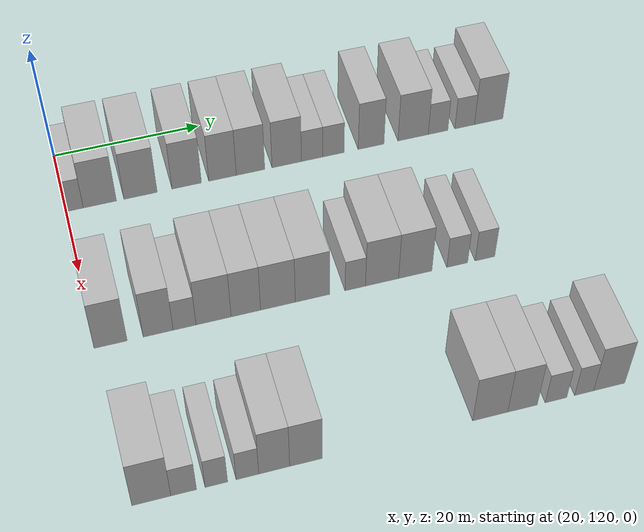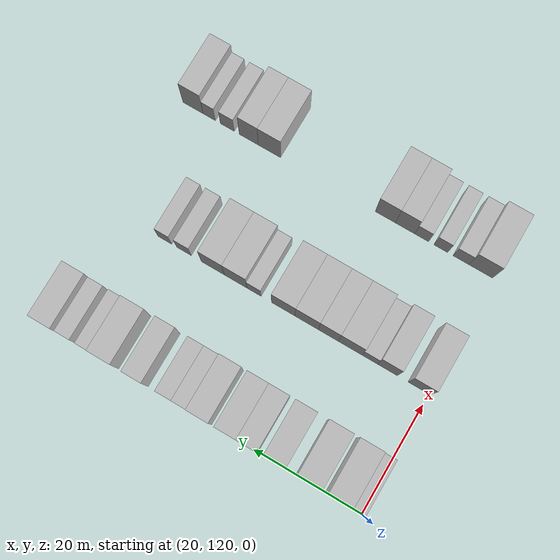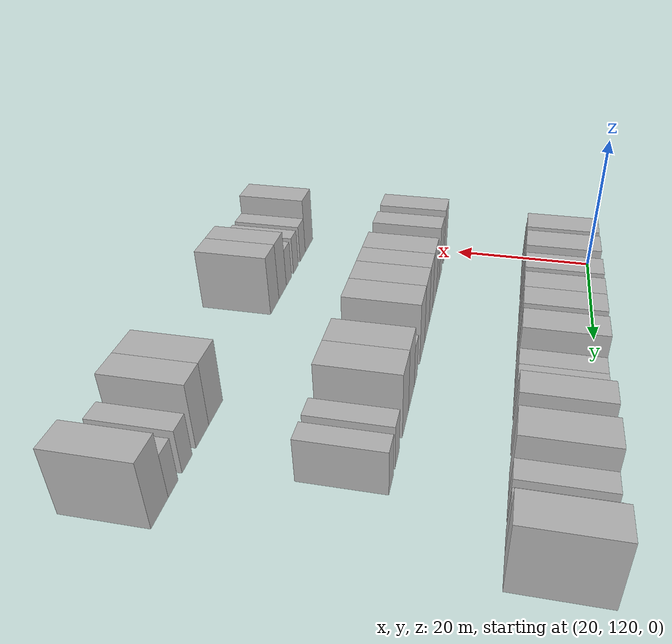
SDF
<sdf version="1.6">
 <world name="default">
  <model name="building_120">
   <static>1</static>
   <pose>25.0000 121.0644 0 0.000000 0.000000 0.000000</pose>
   <link name="link">
    <pose>0 0 3.00 0 0 0</pose>
    <collision name="collision"><geometry><box><size>10.0000 2.4453 6.0000</size></box></geometry></collision>
    <visual name="visual">
     <cast_shadows>0</cast_shadows>
     <geometry><box><size>10.0000 2.4453 6.0000</size></box></geometry>
     <material>
      <script>
       <uri>model://HANNAS_wall/materials/scripts</uri>
       <uri>model://HANNAS_wall/materials/textures</uri>
       <name>vrc/HANNAS_wall</name>
      </script>
     </material>
    </visual>
   </link>
  </model>
  <model name="building_121">
   <static>1</static>
   <pose>25.0000 124.4871 0 0.000000 0.000000 0.000000</pose>
   <link name="link">
    <pose>0 0 4.50 0 0 0</pose>
    <collision name="collision"><geometry><box><size>10.0000 4.4001 9.0000</size></box></geometry></collision>
    <visual name="visual">
     <cast_shadows>0</cast_shadows>
     <geometry><box><size>10.0000 4.4001 9.0000</size></box></geometry>
     <material>
      <script>
       <uri>model://HANNAS_wall/materials/scripts</uri>
       <uri>model://HANNAS_wall/materials/textures</uri>
       <name>vrc/HANNAS_wall</name>
      </script>
     </material>
    </visual>
   </link>
  </model>
  <model name="building_122">
   <static>1</static>
   <pose>25.0000 129.9169 0 0.000000 0.000000 0.000000</pose>
   <link name="link">
    <pose>0 0 4.50 0 0 0</pose>
    <collision name="collision"><geometry><box><size>10.0000 4.4595 9.0000</size></box></geometry></collision>
    <visual name="visual">
     <cast_shadows>0</cast_shadows>
     <geometry><box><size>10.0000 4.4595 9.0000</size></box></geometry>
     <material>
      <script>
       <uri>model://HANNAS_wall/materials/scripts</uri>
       <uri>model://HANNAS_wall/materials/textures</uri>
       <name>vrc/HANNAS_wall</name>
      </script>
     </material>
    </visual>
   </link>
  </model>
  <model name="building_123">
   <static>1</static>
   <pose>25.0000 136.1420 0 0.000000 0.000000 0.000000</pose>
   <link name="link">
    <pose>0 0 4.50 0 0 0</pose>
    <collision name="collision"><geometry><box><size>10.0000 3.9908 9.0000</size></box></geometry></collision>
    <visual name="visual">
     <cast_shadows>0</cast_shadows>
     <geometry><box><size>10.0000 3.9908 9.0000</size></box></geometry>
     <material>
      <script>
       <uri>model://HANNAS_wall/materials/scripts</uri>
       <uri>model://HANNAS_wall/materials/textures</uri>
       <name>vrc/HANNAS_wall</name>
      </script>
     </material>
    </visual>
   </link>
  </model>
  <model name="building_124">
   <static>1</static>
   <pose>25.0000 141.0185 0 0.000000 0.000000 0.000000</pose>
   <link name="link">
    <pose>0 0 4.50 0 0 0</pose>
    <collision name="collision"><geometry><box><size>10.0000 3.7621 9.0000</size></box></geometry></collision>
    <visual name="visual">
     <cast_shadows>0</cast_shadows>
     <geometry><box><size>10.0000 3.7621 9.0000</size></box></geometry>
     <material>
      <script>
       <uri>model://HANNAS_wall/materials/scripts</uri>
       <uri>model://HANNAS_wall/materials/textures</uri>
       <name>vrc/HANNAS_wall</name>
      </script>
     </material>
    </visual>
   </link>
  </model>
  <model name="building_125">
   <static>1</static>
   <pose>25.0000 144.8563 0 0.000000 0.000000 0.000000</pose>
   <link name="link">
    <pose>0 0 4.50 0 0 0</pose>
    <collision name="collision"><geometry><box><size>10.0000 3.9134 9.0000</size></box></geometry></collision>
    <visual name="visual">
     <cast_shadows>0</cast_shadows>
     <geometry><box><size>10.0000 3.9134 9.0000</size></box></geometry>
     <material>
      <script>
       <uri>model://HANNAS_wall/materials/scripts</uri>
       <uri>model://HANNAS_wall/materials/textures</uri>
       <name>vrc/HANNAS_wall</name>
      </script>
     </material>
    </visual>
   </link>
  </model>
  <model name="building_126">
   <static>1</static>
   <pose>25.0000 149.8537 0 0.000000 0.000000 0.000000</pose>
   <link name="link">
    <pose>0 0 4.50 0 0 0</pose>
    <collision name="collision"><geometry><box><size>10.0000 4.0814 9.0000</size></box></geometry></collision>
    <visual name="visual">
     <cast_shadows>0</cast_shadows>
     <geometry><box><size>10.0000 4.0814 9.0000</size></box></geometry>
     <material>
      <script>
       <uri>model://HANNAS_wall/materials/scripts</uri>
       <uri>model://HANNAS_wall/materials/textures</uri>
       <name>vrc/HANNAS_wall</name>
      </script>
     </material>
    </visual>
   </link>
  </model>
  <model name="building_127">
   <static>1</static>
   <pose>25.0000 153.3844 0 0.000000 0.000000 0.000000</pose>
   <link name="link">
    <pose>0 0 3.00 0 0 0</pose>
    <collision name="collision"><geometry><box><size>10.0000 2.9800 6.0000</size></box></geometry></collision>
    <visual name="visual">
     <cast_shadows>0</cast_shadows>
     <geometry><box><size>10.0000 2.9800 6.0000</size></box></geometry>
     <material>
      <script>
       <uri>model://HANNAS_wall/materials/scripts</uri>
       <uri>model://HANNAS_wall/materials/textures</uri>
       <name>vrc/HANNAS_wall</name>
      </script>
     </material>
    </visual>
   </link>
  </model>
  <model name="building_128">
   <static>1</static>
   <pose>25.0000 156.3666 0 0.000000 0.000000 0.000000</pose>
   <link name="link">
    <pose>0 0 3.00 0 0 0</pose>
    <collision name="collision"><geometry><box><size>10.0000 2.9844 6.0000</size></box></geometry></collision>
    <visual name="visual">
     <cast_shadows>0</cast_shadows>
     <geometry><box><size>10.0000 2.9844 6.0000</size></box></geometry>
     <material>
      <script>
       <uri>model://HANNAS_wall/materials/scripts</uri>
       <uri>model://HANNAS_wall/materials/textures</uri>
       <name>vrc/HANNAS_wall</name>
      </script>
     </material>
    </visual>
   </link>
  </model>
  <model name="building_129">
   <static>1</static>
   <pose>25.0000 161.6820 0 0.000000 0.000000 0.000000</pose>
   <link name="link">
    <pose>0 0 4.50 0 0 0</pose>
    <collision name="collision"><geometry><box><size>10.0000 3.6465 9.0000</size></box></geometry></collision>
    <visual name="visual">
     <cast_shadows>0</cast_shadows>
     <geometry><box><size>10.0000 3.6465 9.0000</size></box></geometry>
     <material>
      <script>
       <uri>model://HANNAS_wall/materials/scripts</uri>
       <uri>model://HANNAS_wall/materials/textures</uri>
       <name>vrc/HANNAS_wall</name>
      </script>
     </material>
    </visual>
   </link>
  </model>
  <model name="building_130">
   <static>1</static>
   <pose>25.0000 167.6721 0 0.000000 0.000000 0.000000</pose>
   <link name="link">
    <pose>0 0 4.50 0 0 0</pose>
    <collision name="collision"><geometry><box><size>10.0000 4.3336 9.0000</size></box></geometry></collision>
    <visual name="visual">
     <cast_shadows>0</cast_shadows>
     <geometry><box><size>10.0000 4.3336 9.0000</size></box></geometry>
     <material>
      <script>
       <uri>model://HANNAS_wall/materials/scripts</uri>
       <uri>model://HANNAS_wall/materials/textures</uri>
       <name>vrc/HANNAS_wall</name>
      </script>
     </material>
    </visual>
   </link>
  </model>
  <model name="building_131">
   <static>1</static>
   <pose>25.0000 171.2485 0 0.000000 0.000000 0.000000</pose>
   <link name="link">
    <pose>0 0 3.00 0 0 0</pose>
    <collision name="collision"><geometry><box><size>10.0000 2.8191 6.0000</size></box></geometry></collision>
    <visual name="visual">
     <cast_shadows>0</cast_shadows>
     <geometry><box><size>10.0000 2.8191 6.0000</size></box></geometry>
     <material>
      <script>
       <uri>model://HANNAS_wall/materials/scripts</uri>
       <uri>model://HANNAS_wall/materials/textures</uri>
       <name>vrc/HANNAS_wall</name>
      </script>
     </material>
    </visual>
   </link>
  </model>
  <model name="building_132">
   <static>1</static>
   <pose>25.0000 175.0804 0 0.000000 0.000000 0.000000</pose>
   <link name="link">
    <pose>0 0 3.00 0 0 0</pose>
    <collision name="collision"><geometry><box><size>10.0000 2.8447 6.0000</size></box></geometry></collision>
    <visual name="visual">
     <cast_shadows>0</cast_shadows>
     <geometry><box><size>10.0000 2.8447 6.0000</size></box></geometry>
     <material>
      <script>
       <uri>model://HANNAS_wall/materials/scripts</uri>
       <uri>model://HANNAS_wall/materials/textures</uri>
       <name>vrc/HANNAS_wall</name>
      </script>
     </material>
    </visual>
   </link>
  </model>
  <model name="building_133">
   <static>1</static>
   <pose>25.0000 178.5672 0 0.000000 0.000000 0.000000</pose>
   <link name="link">
    <pose>0 0 4.50 0 0 0</pose>
    <collision name="collision"><geometry><box><size>10.0000 4.1291 9.0000</size></box></geometry></collision>
    <visual name="visual">
     <cast_shadows>0</cast_shadows>
     <geometry><box><size>10.0000 4.1291 9.0000</size></box></geometry>
     <material>
      <script>
       <uri>model://HANNAS_wall/materials/scripts</uri>
       <uri>model://HANNAS_wall/materials/textures</uri>
       <name>vrc/HANNAS_wall</name>
      </script>
     </material>
    </visual>
   </link>
  </model>
  <model name="building_302">
   <static>1</static>
   <pose>47.0000 121.8339 0 0.000000 0.000000 0.000000</pose>
   <link name="link">
    <pose>0 0 4.50 0 0 0</pose>
    <collision name="collision"><geometry><box><size>10.0000 4.0941 9.0000</size></box></geometry></collision>
    <visual name="visual">
     <cast_shadows>0</cast_shadows>
     <geometry><box><size>10.0000 4.0941 9.0000</size></box></geometry>
     <material>
      <script>
       <uri>model://HANNAS_wall/materials/scripts</uri>
       <uri>model://HANNAS_wall/materials/textures</uri>
       <name>vrc/HANNAS_wall</name>
      </script>
     </material>
    </visual>
   </link>
  </model>
  <model name="building_303">
   <static>1</static>
   <pose>47.0000 127.7481 0 0.000000 0.000000 0.000000</pose>
   <link name="link">
    <pose>0 0 4.50 0 0 0</pose>
    <collision name="collision"><geometry><box><size>10.0000 3.7342 9.0000</size></box></geometry></collision>
    <visual name="visual">
     <cast_shadows>0</cast_shadows>
     <geometry><box><size>10.0000 3.7342 9.0000</size></box></geometry>
     <material>
      <script>
       <uri>model://HANNAS_wall/materials/scripts</uri>
       <uri>model://HANNAS_wall/materials/textures</uri>
       <name>vrc/HANNAS_wall</name>
      </script>
     </material>
    </visual>
   </link>
  </model>
  <model name="building_304">
   <static>1</static>
   <pose>47.0000 131.0522 0 0.000000 0.000000 0.000000</pose>
   <link name="link">
    <pose>0 0 3.00 0 0 0</pose>
    <collision name="collision"><geometry><box><size>10.0000 2.8739 6.0000</size></box></geometry></collision>
    <visual name="visual">
     <cast_shadows>0</cast_shadows>
     <geometry><box><size>10.0000 2.8739 6.0000</size></box></geometry>
     <material>
      <script>
       <uri>model://HANNAS_wall/materials/scripts</uri>
       <uri>model://HANNAS_wall/materials/textures</uri>
       <name>vrc/HANNAS_wall</name>
      </script>
     </material>
    </visual>
   </link>
  </model>
  <model name="building_305">
   <static>1</static>
   <pose>47.0000 134.7107 0 0.000000 0.000000 0.000000</pose>
   <link name="link">
    <pose>0 0 4.50 0 0 0</pose>
    <collision name="collision"><geometry><box><size>10.0000 4.4432 9.0000</size></box></geometry></collision>
    <visual name="visual">
     <cast_shadows>0</cast_shadows>
     <geometry><box><size>10.0000 4.4432 9.0000</size></box></geometry>
     <material>
      <script>
       <uri>model://HANNAS_wall/materials/scripts</uri>
       <uri>model://HANNAS_wall/materials/textures</uri>
       <name>vrc/HANNAS_wall</name>
      </script>
     </material>
    </visual>
   </link>
  </model>
  <model name="building_306">
   <static>1</static>
   <pose>47.0000 138.8138 0 0.000000 0.000000 0.000000</pose>
   <link name="link">
    <pose>0 0 4.50 0 0 0</pose>
    <collision name="collision"><geometry><box><size>10.0000 3.7629 9.0000</size></box></geometry></collision>
    <visual name="visual">
     <cast_shadows>0</cast_shadows>
     <geometry><box><size>10.0000 3.7629 9.0000</size></box></geometry>
     <material>
      <script>
       <uri>model://HANNAS_wall/materials/scripts</uri>
       <uri>model://HANNAS_wall/materials/textures</uri>
       <name>vrc/HANNAS_wall</name>
      </script>
     </material>
    </visual>
   </link>
  </model>
  <model name="building_307">
   <static>1</static>
   <pose>47.0000 142.9239 0 0.000000 0.000000 0.000000</pose>
   <link name="link">
    <pose>0 0 4.50 0 0 0</pose>
    <collision name="collision"><geometry><box><size>10.0000 4.4574 9.0000</size></box></geometry></collision>
    <visual name="visual">
     <cast_shadows>0</cast_shadows>
     <geometry><box><size>10.0000 4.4574 9.0000</size></box></geometry>
     <material>
      <script>
       <uri>model://HANNAS_wall/materials/scripts</uri>
       <uri>model://HANNAS_wall/materials/textures</uri>
       <name>vrc/HANNAS_wall</name>
      </script>
     </material>
    </visual>
   </link>
  </model>
  <model name="building_308">
   <static>1</static>
   <pose>47.0000 147.3771 0 0.000000 0.000000 0.000000</pose>
   <link name="link">
    <pose>0 0 4.50 0 0 0</pose>
    <collision name="collision"><geometry><box><size>10.0000 4.4489 9.0000</size></box></geometry></collision>
    <visual name="visual">
     <cast_shadows>0</cast_shadows>
     <geometry><box><size>10.0000 4.4489 9.0000</size></box></geometry>
     <material>
      <script>
       <uri>model://HANNAS_wall/materials/scripts</uri>
       <uri>model://HANNAS_wall/materials/textures</uri>
       <name>vrc/HANNAS_wall</name>
      </script>
     </material>
    </visual>
   </link>
  </model>
  <model name="building_309">
   <static>1</static>
   <pose>47.0000 152.9377 0 0.000000 0.000000 0.000000</pose>
   <link name="link">
    <pose>0 0 3.00 0 0 0</pose>
    <collision name="collision"><geometry><box><size>10.0000 2.6724 6.0000</size></box></geometry></collision>
    <visual name="visual">
     <cast_shadows>0</cast_shadows>
     <geometry><box><size>10.0000 2.6724 6.0000</size></box></geometry>
     <material>
      <script>
       <uri>model://HANNAS_wall/materials/scripts</uri>
       <uri>model://HANNAS_wall/materials/textures</uri>
       <name>vrc/HANNAS_wall</name>
      </script>
     </material>
    </visual>
   </link>
  </model>
  <model name="building_310">
   <static>1</static>
   <pose>47.0000 156.4599 0 0.000000 0.000000 0.000000</pose>
   <link name="link">
    <pose>0 0 4.50 0 0 0</pose>
    <collision name="collision"><geometry><box><size>10.0000 4.3719 9.0000</size></box></geometry></collision>
    <visual name="visual">
     <cast_shadows>0</cast_shadows>
     <geometry><box><size>10.0000 4.3719 9.0000</size></box></geometry>
     <material>
      <script>
       <uri>model://HANNAS_wall/materials/scripts</uri>
       <uri>model://HANNAS_wall/materials/textures</uri>
       <name>vrc/HANNAS_wall</name>
      </script>
     </material>
    </visual>
   </link>
  </model>
  <model name="building_311">
   <static>1</static>
   <pose>47.0000 160.8586 0 0.000000 0.000000 0.000000</pose>
   <link name="link">
    <pose>0 0 4.50 0 0 0</pose>
    <collision name="collision"><geometry><box><size>10.0000 4.4255 9.0000</size></box></geometry></collision>
    <visual name="visual">
     <cast_shadows>0</cast_shadows>
     <geometry><box><size>10.0000 4.4255 9.0000</size></box></geometry>
     <material>
      <script>
       <uri>model://HANNAS_wall/materials/scripts</uri>
       <uri>model://HANNAS_wall/materials/textures</uri>
       <name>vrc/HANNAS_wall</name>
      </script>
     </material>
    </visual>
   </link>
  </model>
  <model name="building_312">
   <static>1</static>
   <pose>47.0000 166.4663 0 0.000000 0.000000 0.000000</pose>
   <link name="link">
    <pose>0 0 3.00 0 0 0</pose>
    <collision name="collision"><geometry><box><size>10.0000 2.7898 6.0000</size></box></geometry></collision>
    <visual name="visual">
     <cast_shadows>0</cast_shadows>
     <geometry><box><size>10.0000 2.7898 6.0000</size></box></geometry>
     <material>
      <script>
       <uri>model://HANNAS_wall/materials/scripts</uri>
       <uri>model://HANNAS_wall/materials/textures</uri>
       <name>vrc/HANNAS_wall</name>
      </script>
     </material>
    </visual>
   </link>
  </model>
  <model name="building_313">
   <static>1</static>
   <pose>47.0000 170.1866 0 0.000000 0.000000 0.000000</pose>
   <link name="link">
    <pose>0 0 3.00 0 0 0</pose>
    <collision name="collision"><geometry><box><size>10.0000 2.6507 6.0000</size></box></geometry></collision>
    <visual name="visual">
     <cast_shadows>0</cast_shadows>
     <geometry><box><size>10.0000 2.6507 6.0000</size></box></geometry>
     <material>
      <script>
       <uri>model://HANNAS_wall/materials/scripts</uri>
       <uri>model://HANNAS_wall/materials/textures</uri>
       <name>vrc/HANNAS_wall</name>
      </script>
     </material>
    </visual>
   </link>
  </model>
  <model name="building_487">
   <static>1</static>
   <pose>69.0000 122.4217 0 0.000000 0.000000 0.000000</pose>
   <link name="link">
    <pose>0 0 4.50 0 0 0</pose>
    <collision name="collision"><geometry><box><size>10.0000 4.4855 9.0000</size></box></geometry></collision>
    <visual name="visual">
     <cast_shadows>0</cast_shadows>
     <geometry><box><size>10.0000 4.4855 9.0000</size></box></geometry>
     <material>
      <script>
       <uri>model://HANNAS_wall/materials/scripts</uri>
       <uri>model://HANNAS_wall/materials/textures</uri>
       <name>vrc/HANNAS_wall</name>
      </script>
     </material>
    </visual>
   </link>
  </model>
  <model name="building_488">
   <static>1</static>
   <pose>69.0000 126.1532 0 0.000000 0.000000 0.000000</pose>
   <link name="link">
    <pose>0 0 3.00 0 0 0</pose>
    <collision name="collision"><geometry><box><size>10.0000 2.9774 6.0000</size></box></geometry></collision>
    <visual name="visual">
     <cast_shadows>0</cast_shadows>
     <geometry><box><size>10.0000 2.9774 6.0000</size></box></geometry>
     <material>
      <script>
       <uri>model://HANNAS_wall/materials/scripts</uri>
       <uri>model://HANNAS_wall/materials/textures</uri>
       <name>vrc/HANNAS_wall</name>
      </script>
     </material>
    </visual>
   </link>
  </model>
  <model name="building_489">
   <static>1</static>
   <pose>69.0000 129.9533 0 0.000000 0.000000 0.000000</pose>
   <link name="link">
    <pose>0 0 3.00 0 0 0</pose>
    <collision name="collision"><geometry><box><size>10.0000 2.6228 6.0000</size></box></geometry></collision>
    <visual name="visual">
     <cast_shadows>0</cast_shadows>
     <geometry><box><size>10.0000 2.6228 6.0000</size></box></geometry>
     <material>
      <script>
       <uri>model://HANNAS_wall/materials/scripts</uri>
       <uri>model://HANNAS_wall/materials/textures</uri>
       <name>vrc/HANNAS_wall</name>
      </script>
     </material>
    </visual>
   </link>
  </model>
  <model name="building_490">
   <static>1</static>
   <pose>69.0000 133.5945 0 0.000000 0.000000 0.000000</pose>
   <link name="link">
    <pose>0 0 3.00 0 0 0</pose>
    <collision name="collision"><geometry><box><size>10.0000 2.6596 6.0000</size></box></geometry></collision>
    <visual name="visual">
     <cast_shadows>0</cast_shadows>
     <geometry><box><size>10.0000 2.6596 6.0000</size></box></geometry>
     <material>
      <script>
       <uri>model://HANNAS_wall/materials/scripts</uri>
       <uri>model://HANNAS_wall/materials/textures</uri>
       <name>vrc/HANNAS_wall</name>
      </script>
     </material>
    </visual>
   </link>
  </model>
  <model name="building_491">
   <static>1</static>
   <pose>69.0000 136.7557 0 0.000000 0.000000 0.000000</pose>
   <link name="link">
    <pose>0 0 4.50 0 0 0</pose>
    <collision name="collision"><geometry><box><size>10.0000 3.6628 9.0000</size></box></geometry></collision>
    <visual name="visual">
     <cast_shadows>0</cast_shadows>
     <geometry><box><size>10.0000 3.6628 9.0000</size></box></geometry>
     <material>
      <script>
       <uri>model://HANNAS_wall/materials/scripts</uri>
       <uri>model://HANNAS_wall/materials/textures</uri>
       <name>vrc/HANNAS_wall</name>
      </script>
     </material>
    </visual>
   </link>
  </model>
  <model name="building_492">
   <static>1</static>
   <pose>69.0000 140.5213 0 0.000000 0.000000 0.000000</pose>
   <link name="link">
    <pose>0 0 4.50 0 0 0</pose>
    <collision name="collision"><geometry><box><size>10.0000 3.8684 9.0000</size></box></geometry></collision>
    <visual name="visual">
     <cast_shadows>0</cast_shadows>
     <geometry><box><size>10.0000 3.8684 9.0000</size></box></geometry>
     <material>
      <script>
       <uri>model://HANNAS_wall/materials/scripts</uri>
       <uri>model://HANNAS_wall/materials/textures</uri>
       <name>vrc/HANNAS_wall</name>
      </script>
     </material>
    </visual>
   </link>
  </model>
  <model name="building_493">
   <static>1</static>
   <pose>69.0000 163.0178 0 0.000000 0.000000 0.000000</pose>
   <link name="link">
    <pose>0 0 4.50 0 0 0</pose>
    <collision name="collision"><geometry><box><size>10.0000 4.3749 9.0000</size></box></geometry></collision>
    <visual name="visual">
     <cast_shadows>0</cast_shadows>
     <geometry><box><size>10.0000 4.3749 9.0000</size></box></geometry>
     <material>
      <script>
       <uri>model://HANNAS_wall/materials/scripts</uri>
       <uri>model://HANNAS_wall/materials/textures</uri>
       <name>vrc/HANNAS_wall</name>
      </script>
     </material>
    </visual>
   </link>
  </model>
  <model name="building_494">
   <static>1</static>
   <pose>69.0000 167.0645 0 0.000000 0.000000 0.000000</pose>
   <link name="link">
    <pose>0 0 4.50 0 0 0</pose>
    <collision name="collision"><geometry><box><size>10.0000 3.7185 9.0000</size></box></geometry></collision>
    <visual name="visual">
     <cast_shadows>0</cast_shadows>
     <geometry><box><size>10.0000 3.7185 9.0000</size></box></geometry>
     <material>
      <script>
       <uri>model://HANNAS_wall/materials/scripts</uri>
       <uri>model://HANNAS_wall/materials/textures</uri>
       <name>vrc/HANNAS_wall</name>
      </script>
     </material>
    </visual>
   </link>
  </model>
  <model name="building_495">
   <static>1</static>
   <pose>69.0000 171.2881 0 0.000000 0.000000 0.000000</pose>
   <link name="link">
    <pose>0 0 3.00 0 0 0</pose>
    <collision name="collision"><geometry><box><size>10.0000 2.7287 6.0000</size></box></geometry></collision>
    <visual name="visual">
     <cast_shadows>0</cast_shadows>
     <geometry><box><size>10.0000 2.7287 6.0000</size></box></geometry>
     <material>
      <script>
       <uri>model://HANNAS_wall/materials/scripts</uri>
       <uri>model://HANNAS_wall/materials/textures</uri>
       <name>vrc/HANNAS_wall</name>
      </script>
     </material>
    </visual>
   </link>
  </model>
  <model name="building_496">
   <static>1</static>
   <pose>69.0000 174.8691 0 0.000000 0.000000 0.000000</pose>
   <link name="link">
    <pose>0 0 3.00 0 0 0</pose>
    <collision name="collision"><geometry><box><size>10.0000 2.4333 6.0000</size></box></geometry></collision>
    <visual name="visual">
     <cast_shadows>0</cast_shadows>
     <geometry><box><size>10.0000 2.4333 6.0000</size></box></geometry>
     <material>
      <script>
       <uri>model://HANNAS_wall/materials/scripts</uri>
       <uri>model://HANNAS_wall/materials/textures</uri>
       <name>vrc/HANNAS_wall</name>
      </script>
     </material>
    </visual>
   </link>
  </model>
  <model name="building_497">
   <static>1</static>
   <pose>69.0000 178.0862 0 0.000000 0.000000 0.000000</pose>
   <link name="link">
    <pose>0 0 4.50 0 0 0</pose>
    <collision name="collision"><geometry><box><size>10.0000 4.0010 9.0000</size></box></geometry></collision>
    <visual name="visual">
     <cast_shadows>0</cast_shadows>
     <geometry><box><size>10.0000 4.0010 9.0000</size></box></geometry>
     <material>
      <script>
       <uri>model://HANNAS_wall/materials/scripts</uri>
       <uri>model://HANNAS_wall/materials/textures</uri>
       <name>vrc/HANNAS_wall</name>
      </script>
     </material>
    </visual>
   </link>
  </model>
 </world>
</sdf>
